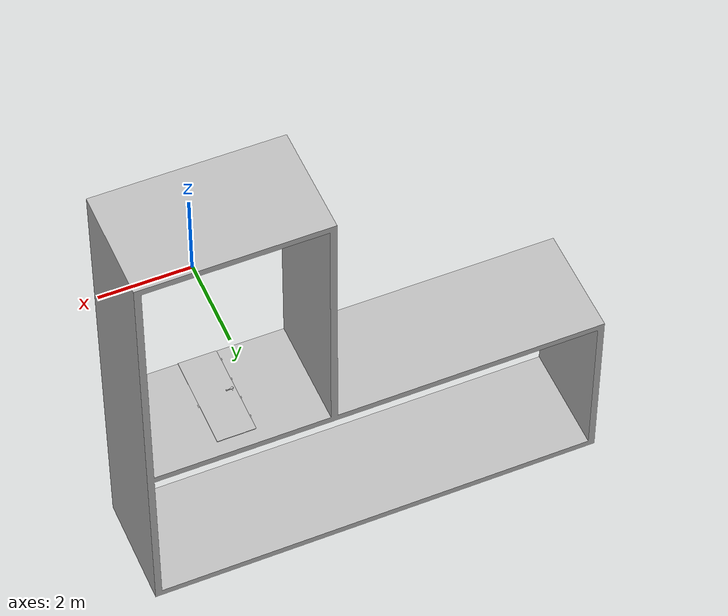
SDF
<sdf version='1.6'>
  <model name='room'>
    <link name='room_link'>
      <pose frame=''>0 0 0 0 -0 0</pose>
      <inertial>
        <pose frame=''>-1.94822 1.25277 -2.90723 0 -0 0</pose>
        <mass>10000</mass>
        <inertia>
          <ixx>1</ixx>
          <ixy>0</ixy>
          <ixz>0</ixz>
          <iyy>0.5</iyy>
          <iyz>0</iyz>
          <izz>1</izz>
        </inertia>
      </inertial>
      <collision name='room_link_collision'>
        <pose frame=''>0 0 0 0 -0 0</pose>
        <geometry>
          <mesh>
            <scale>1 1 1</scale>
            <uri>model://innfos_control/gazebo_control/meshes/room_link.STL</uri>
          </mesh>
        </geometry>
      </collision>
      <visual name='room_link_visual'>
        <pose frame=''>0 0 0 0 -0 0</pose>
        <geometry>
          <mesh>
            <scale>1 1 1</scale>
            <uri>model://innfos_control/gazebo_control/meshes/room_link.STL</uri>
          </mesh>
        </geometry>
      </visual>
    </link>
    <link name='door_link'>
      <pose frame=''>0.427 1.0825 -2.9185 -1.5708 0 0</pose>
      <inertial>
        <pose frame=''>-0.42652 0.017351 -0.004168 0 -0 0</pose>
        <mass>1</mass>
        <inertia>
          <ixx>1</ixx>
          <ixy>0</ixy>
          <ixz>0</ixz>
          <iyy>0.5</iyy>
          <iyz>0</iyz>
          <izz>1</izz>
        </inertia>
      </inertial>
      <collision name='door_link_collision'>
        <pose frame=''>0 0 0 0 -0 0</pose>
        <geometry>
          <mesh>
            <scale>1 1 1</scale>
            <uri>model://innfos_control/gazebo_control/meshes/door_link.STL</uri>
          </mesh>
        </geometry>
      </collision>
      <visual name='door_link_visual'>
        <pose frame=''>0 0 0 0 -0 0</pose>
        <geometry>
          <mesh>
            <scale>1 1 1</scale>
            <uri>model://innfos_control/gazebo_control/meshes/door_link.STL</uri>
          </mesh>
        </geometry>
      </visual>
    </link>
    <joint name='door_joint' type='revolute'>
      <child>door_link</child>
      <parent>room_link</parent>
      <axis>
        <xyz>0 -1 4e-06</xyz>
        <limit>
          <lower>0</lower>
          <upper>3.14</upper>
          <effort>0</effort>
          <velocity>0</velocity>
        </limit>
        <dynamics>
          <spring_reference>0</spring_reference>
          <spring_stiffness>0</spring_stiffness>
        </dynamics>
        <use_parent_model_frame>1</use_parent_model_frame>
      </axis>
    </joint>
    <link name='hand_link'>
      <pose frame=''>-0.355 1.04 -2.936 -3.14159 7e-06 -3.14159</pose>
      <inertial>
        <pose frame=''>-0.037142 0.004691 -0 0 -0 0</pose>
        <mass>0.01</mass>
        <inertia>
          <ixx>1</ixx>
          <ixy>0</ixy>
          <ixz>0</ixz>
          <iyy>0.5</iyy>
          <iyz>0</iyz>
          <izz>1</izz>
        </inertia>
      </inertial>
      <collision name='hand_link_collision'>
        <pose frame=''>0 0 0 0 -0 0</pose>
        <geometry>
          <mesh>
            <scale>1 1 1</scale>
            <uri>model://innfos_control/gazebo_control/meshes/hand_link.STL</uri>
          </mesh>
        </geometry>
      </collision>
      <visual name='hand_link_visual'>
        <pose frame=''>0 0 0 0 -0 0</pose>
        <geometry>
          <mesh>
            <scale>1 1 1</scale>
            <uri>model://innfos_control/gazebo_control/meshes/hand_link.STL</uri>
          </mesh>
        </geometry>
      </visual>
    </link>
    <joint name='hand_joint' type='revolute'>
      <child>hand_link</child>
      <parent>door_link</parent>
      <axis>
        <xyz>-7e-06 7e-06 1</xyz>
        <limit>
          <lower>0</lower>
          <upper>1</upper>
          <effort>300</effort>
          <velocity>10</velocity>
        </limit>
        <dynamics>
          <spring_reference>0</spring_reference>
          <spring_stiffness>0</spring_stiffness>
        </dynamics>
        <use_parent_model_frame>1</use_parent_model_frame>
      </axis>
    </joint>
  </model>
</sdf>
